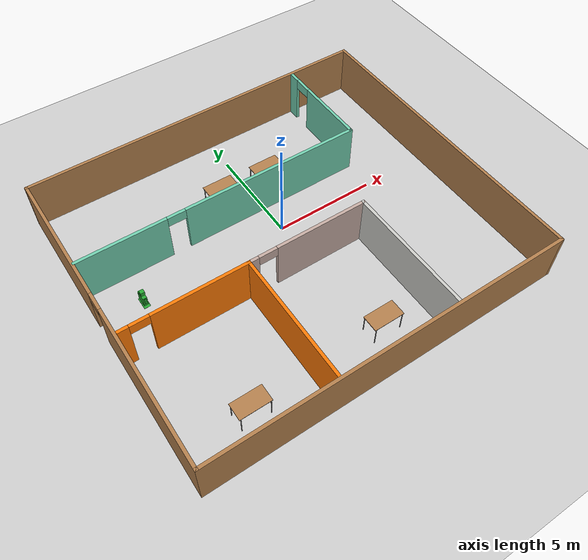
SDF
<sdf version="1.6">
 <world name="default">
  <model name="ground_plane">
   <static>1</static>
   <link name="link">
    <collision name="collision">
     <geometry><plane><normal>0 0 1</normal><size>100 100</size></plane></geometry>
     <surface><friction><ode><mu>100</mu><mu2>50</mu2></ode></friction></surface>
    </collision>
    <visual name="visual">
     <cast_shadows>0</cast_shadows>
     <geometry><plane><normal>0 0 1</normal><size>100 100</size></plane></geometry>
     <material>
      <script><uri>file://media/materials/scripts/gazebo.material</uri><name>Gazebo/Grey</name></script>
     </material>
    </visual>
   </link>
  </model>
  <model name="building_1">
   <pose>-0.446 -1.0545 0 0 -0 0</pose>
   <link name="Wall_42">
    <pose>-8.8 0 0 0 0 -1.5708</pose>
    <visual name="Wall_42_Visual_0">
     <pose>-4.30585 0 1.25 0 -0 0</pose>
     <geometry><box><size>6.83131 0.15 2.5</size></box></geometry>
     <material>
      <script><uri>file://media/materials/scripts/gazebo.material</uri><name>Gazebo/Wood</name></script>
      <ambient>1 1 1 1</ambient>
     </material>
     <meta><layer>0</layer></meta>
    </visual>
    <collision name="Wall_42_Collision_0">
     <geometry><box><size>6.83131 0.15 2.5</size></box></geometry>
     <pose>-4.30585 0 1.25 0 -0 0</pose>
    </collision>
    <visual name="Wall_42_Visual_1">
     <pose>3.86565 0 1.25 0 -0 0</pose>
     <geometry><box><size>7.71169 0.15 2.5</size></box></geometry>
     <material>
      <script><uri>file://media/materials/scripts/gazebo.material</uri><name>Gazebo/Wood</name></script>
      <ambient>1 1 1 1</ambient>
     </material>
     <meta><layer>0</layer></meta>
    </visual>
    <collision name="Wall_42_Collision_1">
     <geometry><box><size>7.71169 0.15 2.5</size></box></geometry>
     <pose>3.86565 0 1.25 0 -0 0</pose>
    </collision>
    <visual name="Wall_42_Visual_2">
     <pose>-0.440192 0 2.25 0 -0 0</pose>
     <geometry><box><size>0.9 0.15 0.5</size></box></geometry>
     <material>
      <script><uri>file://media/materials/scripts/gazebo.material</uri><name>Gazebo/Wood</name></script>
      <ambient>1 1 1 1</ambient>
     </material>
     <meta><layer>0</layer></meta>
    </visual>
    <collision name="Wall_42_Collision_2">
     <geometry><box><size>0.9 0.15 0.5</size></box></geometry>
     <pose>-0.440192 0 2.25 0 -0 0</pose>
    </collision>
   </link>
   <link name="Wall_43">
    <collision name="Wall_43_Collision">
     <geometry><box><size>17.75 0.15 2.5</size></box></geometry>
     <pose>0 0 1.25 0 -0 0</pose>
    </collision>
    <visual name="Wall_43_Visual">
     <pose>0 0 1.25 0 -0 0</pose>
     <geometry><box><size>17.75 0.15 2.5</size></box></geometry>
     <material>
      <script><uri>file://media/materials/scripts/gazebo.material</uri><name>Gazebo/Wood</name></script>
      <ambient>1 1 1 1</ambient>
     </material>
     <meta><layer>0</layer></meta>
    </visual>
    <pose>0 -7.6465 0 0 -0 0</pose>
   </link>
   <link name="Wall_44">
    <collision name="Wall_44_Collision">
     <geometry><box><size>15.443 0.15 2.5</size></box></geometry>
     <pose>0 0 1.25 0 -0 0</pose>
    </collision>
    <visual name="Wall_44_Visual">
     <pose>0 0 1.25 0 -0 0</pose>
     <geometry><box><size>15.443 0.15 2.5</size></box></geometry>
     <material>
      <script><uri>file://media/materials/scripts/gazebo.material</uri><name>Gazebo/Wood</name></script>
      <ambient>1 1 1 1</ambient>
     </material>
     <meta><layer>0</layer></meta>
    </visual>
    <pose>8.8 0 0 0 -0 1.5708</pose>
   </link>
   <link name="Wall_45">
    <collision name="Wall_45_Collision">
     <geometry><box><size>17.75 0.15 2.5</size></box></geometry>
     <pose>0 0 1.25 0 -0 0</pose>
    </collision>
    <visual name="Wall_45_Visual">
     <pose>0 0 1.25 0 -0 0</pose>
     <geometry><box><size>17.75 0.15 2.5</size></box></geometry>
     <material>
      <script><uri>file://media/materials/scripts/gazebo.material</uri><name>Gazebo/Wood</name></script>
      <ambient>1 1 1 1</ambient>
     </material>
     <meta><layer>0</layer></meta>
    </visual>
    <pose>0 7.6465 0 0 -0 3.14159</pose>
   </link>
   <link name="Wall_50">
    <pose>-1.647 2.6095 0 0 -0 0</pose>
    <visual name="Wall_50_Visual_0">
     <pose>-4.97412 0 1.25 0 -0 0</pose>
     <geometry><box><size>4.36782 0.15 2.5</size></box></geometry>
     <material>
      <script><uri>file://media/materials/scripts/gazebo.material</uri><name>Gazebo/Grey</name></script>
      <ambient>0.435294 0.796078 0.67451 1</ambient>
     </material>
     <meta><layer>0</layer></meta>
    </visual>
    <collision name="Wall_50_Collision_0">
     <geometry><box><size>4.36782 0.15 2.5</size></box></geometry>
     <pose>-4.97412 0 1.25 0 -0 0</pose>
    </collision>
    <visual name="Wall_50_Visual_1">
     <pose>2.63391 0 1.25 0 -0 0</pose>
     <geometry><box><size>9.04824 0.15 2.5</size></box></geometry>
     <material>
      <script><uri>file://media/materials/scripts/gazebo.material</uri><name>Gazebo/Grey</name></script>
      <ambient>0.435294 0.796078 0.67451 1</ambient>
     </material>
     <meta><layer>0</layer></meta>
    </visual>
    <collision name="Wall_50_Collision_1">
     <geometry><box><size>9.04824 0.15 2.5</size></box></geometry>
     <pose>2.63391 0 1.25 0 -0 0</pose>
    </collision>
    <visual name="Wall_50_Visual_2">
     <pose>-2.34021 0 2.25 0 -0 0</pose>
     <geometry><box><size>0.9 0.15 0.5</size></box></geometry>
     <material>
      <script><uri>file://media/materials/scripts/gazebo.material</uri><name>Gazebo/Grey</name></script>
      <ambient>0.435294 0.796078 0.67451 1</ambient>
     </material>
     <meta><layer>0</layer></meta>
    </visual>
    <collision name="Wall_50_Collision_2">
     <geometry><box><size>0.9 0.15 0.5</size></box></geometry>
     <pose>-2.34021 0 2.25 0 -0 0</pose>
    </collision>
   </link>
   <link name="Wall_51">
    <pose>5.436 5.052 0 0 -0 1.5708</pose>
    <visual name="Wall_51_Visual_0">
     <pose>-0.73569 0 1.25 0 -0 0</pose>
     <geometry><box><size>3.56362 0.15 2.5</size></box></geometry>
     <material>
      <script><uri>file://media/materials/scripts/gazebo.material</uri><name>Gazebo/Grey</name></script>
      <ambient>0.435294 0.796078 0.67451 1</ambient>
     </material>
     <meta><layer>0</layer></meta>
    </visual>
    <collision name="Wall_51_Collision_0">
     <geometry><box><size>3.56362 0.15 2.5</size></box></geometry>
     <pose>-0.73569 0 1.25 0 -0 0</pose>
    </collision>
    <visual name="Wall_51_Visual_1">
     <pose>2.23181 0 1.25 0 -0 0</pose>
     <geometry><box><size>0.57138 0.15 2.5</size></box></geometry>
     <material>
      <script><uri>file://media/materials/scripts/gazebo.material</uri><name>Gazebo/Grey</name></script>
      <ambient>0.435294 0.796078 0.67451 1</ambient>
     </material>
     <meta><layer>0</layer></meta>
    </visual>
    <collision name="Wall_51_Collision_1">
     <geometry><box><size>0.57138 0.15 2.5</size></box></geometry>
     <pose>2.23181 0 1.25 0 -0 0</pose>
    </collision>
    <visual name="Wall_51_Visual_2">
     <pose>1.49612 0 2.25 0 -0 0</pose>
     <geometry><box><size>0.9 0.15 0.5</size></box></geometry>
     <material>
      <script><uri>file://media/materials/scripts/gazebo.material</uri><name>Gazebo/Grey</name></script>
      <ambient>0.435294 0.796078 0.67451 1</ambient>
     </material>
     <meta><layer>0</layer></meta>
    </visual>
    <collision name="Wall_51_Collision_2">
     <geometry><box><size>0.9 0.15 0.5</size></box></geometry>
     <pose>1.49612 0 2.25 0 -0 0</pose>
    </collision>
   </link>
   <link name="Wall_54">
    <pose>-5.695 -1.3425 0 0 -0 0</pose>
    <visual name="Wall_54_Visual_0">
     <pose>-2.77183 0 1.25 0 -0 0</pose>
     <geometry><box><size>0.512338 0.15 2.5</size></box></geometry>
     <material>
      <script><uri>file://media/materials/scripts/gazebo.material</uri><name>Gazebo/Grey</name></script>
      <ambient>0.996078 0.47451 0.0196078 1</ambient>
     </material>
     <meta><layer>0</layer></meta>
    </visual>
    <collision name="Wall_54_Collision_0">
     <geometry><box><size>0.512338 0.15 2.5</size></box></geometry>
     <pose>-2.77183 0 1.25 0 -0 0</pose>
    </collision>
    <visual name="Wall_54_Visual_1">
     <pose>0.706169 0 1.25 0 -0 0</pose>
     <geometry><box><size>4.64366 0.15 2.5</size></box></geometry>
     <material>
      <script><uri>file://media/materials/scripts/gazebo.material</uri><name>Gazebo/Grey</name></script>
      <ambient>0.996078 0.47451 0.0196078 1</ambient>
     </material>
     <meta><layer>0</layer></meta>
    </visual>
    <collision name="Wall_54_Collision_1">
     <geometry><box><size>4.64366 0.15 2.5</size></box></geometry>
     <pose>0.706169 0 1.25 0 -0 0</pose>
    </collision>
    <visual name="Wall_54_Visual_2">
     <pose>-2.06566 0 2.25 0 -0 0</pose>
     <geometry><box><size>0.9 0.15 0.5</size></box></geometry>
     <material>
      <script><uri>file://media/materials/scripts/gazebo.material</uri><name>Gazebo/Grey</name></script>
      <ambient>0.996078 0.47451 0.0196078 1</ambient>
     </material>
     <meta><layer>0</layer></meta>
    </visual>
    <collision name="Wall_54_Collision_2">
     <geometry><box><size>0.9 0.15 0.5</size></box></geometry>
     <pose>-2.06566 0 2.25 0 -0 0</pose>
    </collision>
   </link>
   <link name="Wall_55">
    <collision name="Wall_55_Collision">
     <geometry><box><size>6.303 0.15 2.5</size></box></geometry>
     <pose>0 0 1.25 0 -0 0</pose>
    </collision>
    <visual name="Wall_55_Visual">
     <pose>0 0 1.25 0 -0 0</pose>
     <geometry><box><size>6.303 0.15 2.5</size></box></geometry>
     <material>
      <script><uri>file://media/materials/scripts/gazebo.material</uri><name>Gazebo/Grey</name></script>
      <ambient>0.996078 0.47451 0.0196078 1</ambient>
     </material>
     <meta><layer>0</layer></meta>
    </visual>
    <pose>-2.742 -4.419 0 0 0 -1.5708</pose>
   </link>
   <link name="Wall_58">
    <pose>0.211 -1.3425 0 0 -0 0</pose>
    <visual name="Wall_58_Visual_0">
     <pose>-2.75873 0 1.25 0 -0 0</pose>
     <geometry><box><size>0.538542 0.15 2.5</size></box></geometry>
     <material>
      <script><uri>file://media/materials/scripts/gazebo.material</uri><name>Gazebo/Grey</name></script>
      <ambient>0.760784 0.662745 0.627451 1</ambient>
     </material>
     <meta><layer>0</layer></meta>
    </visual>
    <collision name="Wall_58_Collision_0">
     <geometry><box><size>0.538542 0.15 2.5</size></box></geometry>
     <pose>-2.75873 0 1.25 0 -0 0</pose>
    </collision>
    <visual name="Wall_58_Visual_1">
     <pose>0.719271 0 1.25 0 -0 0</pose>
     <geometry><box><size>4.61746 0.15 2.5</size></box></geometry>
     <material>
      <script><uri>file://media/materials/scripts/gazebo.material</uri><name>Gazebo/Grey</name></script>
      <ambient>0.760784 0.662745 0.627451 1</ambient>
     </material>
     <meta><layer>0</layer></meta>
    </visual>
    <collision name="Wall_58_Collision_1">
     <geometry><box><size>4.61746 0.15 2.5</size></box></geometry>
     <pose>0.719271 0 1.25 0 -0 0</pose>
    </collision>
    <visual name="Wall_58_Visual_2">
     <pose>-2.03946 0 2.25 0 -0 0</pose>
     <geometry><box><size>0.9 0.15 0.5</size></box></geometry>
     <material>
      <script><uri>file://media/materials/scripts/gazebo.material</uri><name>Gazebo/Grey</name></script>
      <ambient>0.760784 0.662745 0.627451 1</ambient>
     </material>
     <meta><layer>0</layer></meta>
    </visual>
    <collision name="Wall_58_Collision_2">
     <geometry><box><size>0.9 0.15 0.5</size></box></geometry>
     <pose>-2.03946 0 2.25 0 -0 0</pose>
    </collision>
   </link>
   <link name="Wall_59">
    <collision name="Wall_59_Collision">
     <geometry><box><size>6.303 0.15 2.5</size></box></geometry>
     <pose>0 0 1.25 0 -0 0</pose>
    </collision>
    <visual name="Wall_59_Visual">
     <pose>0 0 1.25 0 -0 0</pose>
     <geometry><box><size>6.303 0.15 2.5</size></box></geometry>
     <material>
      <script><uri>file://media/materials/scripts/gazebo.material</uri><name>Gazebo/CeilingTiled</name></script>
      <ambient>1 1 1 1</ambient>
     </material>
     <meta><layer>0</layer></meta>
    </visual>
    <pose>3.164 -4.419 0 0 0 -1.5708</pose>
   </link>
   <static>1</static>
  </model>
  <model name="table_0">
   <static>1</static>
   <link name="link">
    <collision name="surface">
     <pose>0 0 1 0 -0 0</pose>
     <geometry><box><size>1.5 0.8 0.03</size></box></geometry>
     <surface><friction><ode><mu>0.6</mu><mu2>0.6</mu2></ode></friction></surface>
    </collision>
    <visual name="visual1">
     <pose>0 0 1 0 -0 0</pose>
     <geometry><box><size>1.5 0.8 0.03</size></box></geometry>
     <material>
      <script><uri>file://media/materials/scripts/gazebo.material</uri><name>Gazebo/Wood</name></script>
     </material>
    </visual>
    <collision name="front_left_leg">
     <pose>0.68 0.38 0.5 0 -0 0</pose>
     <geometry><cylinder><radius>0.02</radius><length>1</length></cylinder></geometry>
    </collision>
    <visual name="front_left_leg">
     <pose>0.68 0.38 0.5 0 -0 0</pose>
     <geometry><cylinder><radius>0.02</radius><length>1</length></cylinder></geometry>
     <material>
      <script><uri>file://media/materials/scripts/gazebo.material</uri><name>Gazebo/Grey</name></script>
     </material>
    </visual>
    <collision name="front_right_leg">
     <pose>0.68 -0.38 0.5 0 -0 0</pose>
     <geometry><cylinder><radius>0.02</radius><length>1</length></cylinder></geometry>
    </collision>
    <visual name="front_right_leg">
     <pose>0.68 -0.38 0.5 0 -0 0</pose>
     <geometry><cylinder><radius>0.02</radius><length>1</length></cylinder></geometry>
     <material>
      <script><uri>file://media/materials/scripts/gazebo.material</uri><name>Gazebo/Grey</name></script>
     </material>
    </visual>
    <collision name="back_right_leg">
     <pose>-0.68 -0.38 0.5 0 -0 0</pose>
     <geometry><cylinder><radius>0.02</radius><length>1</length></cylinder></geometry>
    </collision>
    <visual name="back_right_leg">
     <pose>-0.68 -0.38 0.5 0 -0 0</pose>
     <geometry><cylinder><radius>0.02</radius><length>1</length></cylinder></geometry>
     <material>
      <script><uri>file://media/materials/scripts/gazebo.material</uri><name>Gazebo/Grey</name></script>
     </material>
    </visual>
    <collision name="back_left_leg">
     <pose>-0.68 0.38 0.5 0 -0 0</pose>
     <geometry><cylinder><radius>0.02</radius><length>1</length></cylinder></geometry>
    </collision>
    <visual name="back_left_leg">
     <pose>-0.68 0.38 0.5 0 -0 0</pose>
     <geometry><cylinder><radius>0.02</radius><length>1</length></cylinder></geometry>
     <material>
      <script><uri>file://media/materials/scripts/gazebo.material</uri><name>Gazebo/Grey</name></script>
     </material>
    </visual>
   </link>
   <pose>1.10733 3.00135 0 0 -0 0</pose>
  </model>
  <model name="table_1">
   <static>1</static>
   <link name="link">
    <collision name="surface">
     <pose>0 0 1 0 -0 0</pose>
     <geometry><box><size>1.5 0.8 0.03</size></box></geometry>
     <surface><friction><ode><mu>0.6</mu><mu2>0.6</mu2></ode></friction></surface>
    </collision>
    <visual name="visual1">
     <pose>0 0 1 0 -0 0</pose>
     <geometry><box><size>1.5 0.8 0.03</size></box></geometry>
     <material>
      <script><uri>file://media/materials/scripts/gazebo.material</uri><name>Gazebo/Wood</name></script>
     </material>
    </visual>
    <collision name="front_left_leg">
     <pose>0.68 0.38 0.5 0 -0 0</pose>
     <geometry><cylinder><radius>0.02</radius><length>1</length></cylinder></geometry>
    </collision>
    <visual name="front_left_leg">
     <pose>0.68 0.38 0.5 0 -0 0</pose>
     <geometry><cylinder><radius>0.02</radius><length>1</length></cylinder></geometry>
     <material>
      <script><uri>file://media/materials/scripts/gazebo.material</uri><name>Gazebo/Grey</name></script>
     </material>
    </visual>
    <collision name="front_right_leg">
     <pose>0.68 -0.38 0.5 0 -0 0</pose>
     <geometry><cylinder><radius>0.02</radius><length>1</length></cylinder></geometry>
    </collision>
    <visual name="front_right_leg">
     <pose>0.68 -0.38 0.5 0 -0 0</pose>
     <geometry><cylinder><radius>0.02</radius><length>1</length></cylinder></geometry>
     <material>
      <script><uri>file://media/materials/scripts/gazebo.material</uri><name>Gazebo/Grey</name></script>
     </material>
    </visual>
    <collision name="back_right_leg">
     <pose>-0.68 -0.38 0.5 0 -0 0</pose>
     <geometry><cylinder><radius>0.02</radius><length>1</length></cylinder></geometry>
    </collision>
    <visual name="back_right_leg">
     <pose>-0.68 -0.38 0.5 0 -0 0</pose>
     <geometry><cylinder><radius>0.02</radius><length>1</length></cylinder></geometry>
     <material>
      <script><uri>file://media/materials/scripts/gazebo.material</uri><name>Gazebo/Grey</name></script>
     </material>
    </visual>
    <collision name="back_left_leg">
     <pose>-0.68 0.38 0.5 0 -0 0</pose>
     <geometry><cylinder><radius>0.02</radius><length>1</length></cylinder></geometry>
    </collision>
    <visual name="back_left_leg">
     <pose>-0.68 0.38 0.5 0 -0 0</pose>
     <geometry><cylinder><radius>0.02</radius><length>1</length></cylinder></geometry>
     <material>
      <script><uri>file://media/materials/scripts/gazebo.material</uri><name>Gazebo/Grey</name></script>
     </material>
    </visual>
   </link>
   <pose>-1.40994 3.06696 0 0 -0 0</pose>
  </model>
  <model name="table_2">
   <static>1</static>
   <link name="link">
    <collision name="surface">
     <pose>0 0 1 0 -0 0</pose>
     <geometry><box><size>1.5 0.8 0.03</size></box></geometry>
     <surface><friction><ode><mu>0.6</mu><mu2>0.6</mu2></ode></friction></surface>
    </collision>
    <visual name="visual1">
     <pose>0 0 1 0 -0 0</pose>
     <geometry><box><size>1.5 0.8 0.03</size></box></geometry>
     <material>
      <script><uri>file://media/materials/scripts/gazebo.material</uri><name>Gazebo/Wood</name></script>
     </material>
    </visual>
    <collision name="front_left_leg">
     <pose>0.68 0.38 0.5 0 -0 0</pose>
     <geometry><cylinder><radius>0.02</radius><length>1</length></cylinder></geometry>
    </collision>
    <visual name="front_left_leg">
     <pose>0.68 0.38 0.5 0 -0 0</pose>
     <geometry><cylinder><radius>0.02</radius><length>1</length></cylinder></geometry>
     <material>
      <script><uri>file://media/materials/scripts/gazebo.material</uri><name>Gazebo/Grey</name></script>
     </material>
    </visual>
    <collision name="front_right_leg">
     <pose>0.68 -0.38 0.5 0 -0 0</pose>
     <geometry><cylinder><radius>0.02</radius><length>1</length></cylinder></geometry>
    </collision>
    <visual name="front_right_leg">
     <pose>0.68 -0.38 0.5 0 -0 0</pose>
     <geometry><cylinder><radius>0.02</radius><length>1</length></cylinder></geometry>
     <material>
      <script><uri>file://media/materials/scripts/gazebo.material</uri><name>Gazebo/Grey</name></script>
     </material>
    </visual>
    <collision name="back_right_leg">
     <pose>-0.68 -0.38 0.5 0 -0 0</pose>
     <geometry><cylinder><radius>0.02</radius><length>1</length></cylinder></geometry>
    </collision>
    <visual name="back_right_leg">
     <pose>-0.68 -0.38 0.5 0 -0 0</pose>
     <geometry><cylinder><radius>0.02</radius><length>1</length></cylinder></geometry>
     <material>
      <script><uri>file://media/materials/scripts/gazebo.material</uri><name>Gazebo/Grey</name></script>
     </material>
    </visual>
    <collision name="back_left_leg">
     <pose>-0.68 0.38 0.5 0 -0 0</pose>
     <geometry><cylinder><radius>0.02</radius><length>1</length></cylinder></geometry>
    </collision>
    <visual name="back_left_leg">
     <pose>-0.68 0.38 0.5 0 -0 0</pose>
     <geometry><cylinder><radius>0.02</radius><length>1</length></cylinder></geometry>
     <material>
      <script><uri>file://media/materials/scripts/gazebo.material</uri><name>Gazebo/Grey</name></script>
     </material>
    </visual>
   </link>
   <pose>0.503693 -6.82744 0 0 -0 0</pose>
  </model>
  <model name="table_3">
   <static>1</static>
   <link name="link">
    <collision name="surface">
     <pose>0 0 1 0 -0 0</pose>
     <geometry><box><size>1.5 0.8 0.03</size></box></geometry>
     <surface><friction><ode><mu>0.6</mu><mu2>0.6</mu2></ode></friction></surface>
    </collision>
    <visual name="visual1">
     <pose>0 0 1 0 -0 0</pose>
     <geometry><box><size>1.5 0.8 0.03</size></box></geometry>
     <material>
      <script><uri>file://media/materials/scripts/gazebo.material</uri><name>Gazebo/Wood</name></script>
     </material>
    </visual>
    <collision name="front_left_leg">
     <pose>0.68 0.38 0.5 0 -0 0</pose>
     <geometry><cylinder><radius>0.02</radius><length>1</length></cylinder></geometry>
    </collision>
    <visual name="front_left_leg">
     <pose>0.68 0.38 0.5 0 -0 0</pose>
     <geometry><cylinder><radius>0.02</radius><length>1</length></cylinder></geometry>
     <material>
      <script><uri>file://media/materials/scripts/gazebo.material</uri><name>Gazebo/Grey</name></script>
     </material>
    </visual>
    <collision name="front_right_leg">
     <pose>0.68 -0.38 0.5 0 -0 0</pose>
     <geometry><cylinder><radius>0.02</radius><length>1</length></cylinder></geometry>
    </collision>
    <visual name="front_right_leg">
     <pose>0.68 -0.38 0.5 0 -0 0</pose>
     <geometry><cylinder><radius>0.02</radius><length>1</length></cylinder></geometry>
     <material>
      <script><uri>file://media/materials/scripts/gazebo.material</uri><name>Gazebo/Grey</name></script>
     </material>
    </visual>
    <collision name="back_right_leg">
     <pose>-0.68 -0.38 0.5 0 -0 0</pose>
     <geometry><cylinder><radius>0.02</radius><length>1</length></cylinder></geometry>
    </collision>
    <visual name="back_right_leg">
     <pose>-0.68 -0.38 0.5 0 -0 0</pose>
     <geometry><cylinder><radius>0.02</radius><length>1</length></cylinder></geometry>
     <material>
      <script><uri>file://media/materials/scripts/gazebo.material</uri><name>Gazebo/Grey</name></script>
     </material>
    </visual>
    <collision name="back_left_leg">
     <pose>-0.68 0.38 0.5 0 -0 0</pose>
     <geometry><cylinder><radius>0.02</radius><length>1</length></cylinder></geometry>
    </collision>
    <visual name="back_left_leg">
     <pose>-0.68 0.38 0.5 0 -0 0</pose>
     <geometry><cylinder><radius>0.02</radius><length>1</length></cylinder></geometry>
     <material>
      <script><uri>file://media/materials/scripts/gazebo.material</uri><name>Gazebo/Grey</name></script>
     </material>
    </visual>
   </link>
   <pose>-6.08995 -7.03681 0 0 -0 0</pose>
  </model>
  <model name="robot_1">
   <link name="foot_1">
    <pose>-0.002177 -0.002528 -0.025294 0 -0 0</pose>
    <inertial>
     <mass>1</mass>
     <inertia>
      <ixx>0.166667</ixx>
      <ixy>0</ixy>
      <ixz>0</ixz>
      <iyy>0.166667</iyy>
      <iyz>0</iyz>
      <izz>0.166667</izz>
     </inertia>
    </inertial>
    <visual name="visual">
     <geometry><box><size>0.3 0.3 0.01</size></box></geometry>
     <material>
      <lighting>1</lighting>
      <script><uri>file://media/materials/scripts/gazebo.material</uri><name>Gazebo/Green</name></script>
     </material>
    </visual>
    <collision name="collision">
     <geometry><box><size>0.3 0.3 0.01</size></box></geometry>
     <surface>
      <friction>
       <ode><mu>1</mu><mu2>1</mu2><fdir1>0 0 0</fdir1><slip1>0</slip1><slip2>0</slip2></ode>
       <torsional>
        <coefficient>1</coefficient>
        <patch_radius>0</patch_radius>
        <surface_radius>0</surface_radius>
        <use_patch_radius>1</use_patch_radius>
        <ode><slip>0</slip></ode>
       </torsional>
      </friction>
      <bounce><restitution_coefficient>0</restitution_coefficient><threshold>1e+06</threshold></bounce>
      <contact>
       <collide_without_contact>0</collide_without_contact>
       <collide_without_contact_bitmask>1</collide_without_contact_bitmask>
       <collide_bitmask>1</collide_bitmask>
       <ode>
        <soft_cfm>0</soft_cfm>
        <soft_erp>0.2</soft_erp>
        <kp>1e+13</kp>
        <kd>1</kd>
        <max_vel>0.01</max_vel>
        <min_depth>0</min_depth>
       </ode>
       <bullet>
        <split_impulse>1</split_impulse>
        <split_impulse_penetration_threshold>-0.01</split_impulse_penetration_threshold>
        <soft_cfm>0</soft_cfm>
        <soft_erp>0.2</soft_erp>
        <kp>1e+13</kp>
        <kd>1</kd>
       </bullet>
      </contact>
     </surface>
    </collision>
   </link>
   <link name="arm_1">
    <pose>-0.003122 -0.091998 0.37 -3e-06 -0 -2e-05</pose>
    <inertial>
     <mass>1</mass>
     <inertia>
      <ixx>0.166667</ixx>
      <ixy>0</ixy>
      <ixz>0</ixz>
      <iyy>0.166667</iyy>
      <iyz>0</iyz>
      <izz>0.166667</izz>
     </inertia>
    </inertial>
    <visual name="visual">
     <geometry><box><size>0.09 0.02 0.35</size></box></geometry>
     <material>
      <lighting>1</lighting>
      <script><uri>file://media/materials/scripts/gazebo.material</uri><name>Gazebo/Green</name></script>
     </material>
    </visual>
    <collision name="collision">
     <geometry><box><size>0.09 0.02 0.35</size></box></geometry>
     <surface>
      <friction>
       <ode><mu>1</mu><mu2>1</mu2><fdir1>0 0 0</fdir1><slip1>0</slip1><slip2>0</slip2></ode>
       <torsional>
        <coefficient>1</coefficient>
        <patch_radius>0</patch_radius>
        <surface_radius>0</surface_radius>
        <use_patch_radius>1</use_patch_radius>
        <ode><slip>0</slip></ode>
       </torsional>
      </friction>
      <bounce><restitution_coefficient>0</restitution_coefficient><threshold>1e+06</threshold></bounce>
      <contact>
       <collide_without_contact>0</collide_without_contact>
       <collide_without_contact_bitmask>1</collide_without_contact_bitmask>
       <collide_bitmask>1</collide_bitmask>
       <ode>
        <soft_cfm>0</soft_cfm>
        <soft_erp>0.2</soft_erp>
        <kp>1e+13</kp>
        <kd>1</kd>
        <max_vel>0.01</max_vel>
        <min_depth>0</min_depth>
       </ode>
       <bullet>
        <split_impulse>1</split_impulse>
        <split_impulse_penetration_threshold>-0.01</split_impulse_penetration_threshold>
        <soft_cfm>0</soft_cfm>
        <soft_erp>0.2</soft_erp>
        <kp>1e+13</kp>
        <kd>1</kd>
       </bullet>
      </contact>
     </surface>
    </collision>
   </link>
   <link name="arm_2">
    <pose>-0.003122 0.431998 0.37 -6e-06 -0 -4e-05</pose>
    <inertial>
     <mass>1</mass>
     <inertia>
      <ixx>0.166667</ixx>
      <ixy>0</ixy>
      <ixz>0</ixz>
      <iyy>0.166667</iyy>
      <iyz>0</iyz>
      <izz>0.166667</izz>
     </inertia>
    </inertial>
    <visual name="visual">
     <geometry><box><size>0.09 0.02 0.35</size></box></geometry>
     <material>
      <lighting>1</lighting>
      <script><uri>file://media/materials/scripts/gazebo.material</uri><name>Gazebo/Green</name></script>
     </material>
    </visual>
    <collision name="collision">
     <geometry><box><size>0.09 0.02 0.35</size></box></geometry>
     <surface>
      <friction>
       <ode><mu>1</mu><mu2>1</mu2><fdir1>0 0 0</fdir1><slip1>0</slip1><slip2>0</slip2></ode>
       <torsional>
        <coefficient>1</coefficient>
        <patch_radius>0</patch_radius>
        <surface_radius>0</surface_radius>
        <use_patch_radius>1</use_patch_radius>
        <ode><slip>0</slip></ode>
       </torsional>
      </friction>
      <bounce><restitution_coefficient>0</restitution_coefficient><threshold>1e+06</threshold></bounce>
      <contact>
       <collide_without_contact>0</collide_without_contact>
       <collide_without_contact_bitmask>1</collide_without_contact_bitmask>
       <collide_bitmask>1</collide_bitmask>
       <ode>
        <soft_cfm>0</soft_cfm>
        <soft_erp>0.2</soft_erp>
        <kp>1e+13</kp>
        <kd>1</kd>
        <max_vel>0.01</max_vel>
        <min_depth>0</min_depth>
       </ode>
       <bullet>
        <split_impulse>1</split_impulse>
        <split_impulse_penetration_threshold>-0.01</split_impulse_penetration_threshold>
        <soft_cfm>0</soft_cfm>
        <soft_erp>0.2</soft_erp>
        <kp>1e+13</kp>
        <kd>1</kd>
       </bullet>
      </contact>
     </surface>
    </collision>
   </link>
   <link name="body">
    <pose>-0.009988 0.170319 0.318893 0 -0 0</pose>
    <inertial>
     <mass>1</mass>
     <inertia>
      <ixx>0.166667</ixx>
      <ixy>0</ixy>
      <ixz>0</ixz>
      <iyy>0.166667</iyy>
      <iyz>0</iyz>
      <izz>0.166667</izz>
     </inertia>
    </inertial>
    <visual name="visual">
     <geometry><box><size>0.2 0.5 0.5</size></box></geometry>
     <material>
      <lighting>1</lighting>
      <script><uri>file://media/materials/scripts/gazebo.material</uri><name>Gazebo/Green</name></script>
     </material>
    </visual>
    <collision name="collision">
     <geometry><box><size>0.2 0.5 0.5</size></box></geometry>
     <surface>
      <friction>
       <ode><mu>1</mu><mu2>1</mu2><fdir1>0 0 0</fdir1><slip1>0</slip1><slip2>0</slip2></ode>
       <torsional>
        <coefficient>1</coefficient>
        <patch_radius>0</patch_radius>
        <surface_radius>0</surface_radius>
        <use_patch_radius>1</use_patch_radius>
        <ode><slip>0</slip></ode>
       </torsional>
      </friction>
      <bounce><restitution_coefficient>0</restitution_coefficient><threshold>1e+06</threshold></bounce>
      <contact>
       <collide_without_contact>0</collide_without_contact>
       <collide_without_contact_bitmask>1</collide_without_contact_bitmask>
       <collide_bitmask>1</collide_bitmask>
       <ode>
        <soft_cfm>0</soft_cfm>
        <soft_erp>0.2</soft_erp>
        <kp>1e+13</kp>
        <kd>1</kd>
        <max_vel>0.01</max_vel>
        <min_depth>0</min_depth>
       </ode>
       <bullet>
        <split_impulse>1</split_impulse>
        <split_impulse_penetration_threshold>-0.01</split_impulse_penetration_threshold>
        <soft_cfm>0</soft_cfm>
        <soft_erp>0.2</soft_erp>
        <kp>1e+13</kp>
        <kd>1</kd>
       </bullet>
      </contact>
     </surface>
    </collision>
   </link>
   <link name="foot_2">
    <pose>-0.002177 0.32249 -0.025294 0 -0 0</pose>
    <inertial>
     <mass>1</mass>
     <inertia>
      <ixx>0.166667</ixx>
      <ixy>0</ixy>
      <ixz>0</ixz>
      <iyy>0.166667</iyy>
      <iyz>0</iyz>
      <izz>0.166667</izz>
     </inertia>
    </inertial>
    <visual name="visual">
     <geometry><box><size>0.3 0.3 0.01</size></box></geometry>
     <material>
      <lighting>1</lighting>
      <script><uri>file://media/materials/scripts/gazebo.material</uri><name>Gazebo/Green</name></script>
     </material>
    </visual>
    <collision name="collision">
     <geometry><box><size>0.3 0.3 0.01</size></box></geometry>
     <surface>
      <friction>
       <ode><mu>1</mu><mu2>1</mu2><fdir1>0 0 0</fdir1><slip1>0</slip1><slip2>0</slip2></ode>
       <torsional>
        <coefficient>1</coefficient>
        <patch_radius>0</patch_radius>
        <surface_radius>0</surface_radius>
        <use_patch_radius>1</use_patch_radius>
        <ode><slip>0</slip></ode>
       </torsional>
      </friction>
      <bounce><restitution_coefficient>0</restitution_coefficient><threshold>1e+06</threshold></bounce>
      <contact>
       <collide_without_contact>0</collide_without_contact>
       <collide_without_contact_bitmask>1</collide_without_contact_bitmask>
       <collide_bitmask>1</collide_bitmask>
       <ode>
        <soft_cfm>0</soft_cfm>
        <soft_erp>0.2</soft_erp>
        <kp>1e+13</kp>
        <kd>1</kd>
        <max_vel>0.01</max_vel>
        <min_depth>0</min_depth>
       </ode>
       <bullet>
        <split_impulse>1</split_impulse>
        <split_impulse_penetration_threshold>-0.01</split_impulse_penetration_threshold>
        <soft_cfm>0</soft_cfm>
        <soft_erp>0.2</soft_erp>
        <kp>1e+13</kp>
        <kd>1</kd>
       </bullet>
      </contact>
     </surface>
    </collision>
   </link>
   <link name="head">
    <pose>0.003947 0.184567 0.671241 0 -0 1e-06</pose>
    <inertial>
     <mass>1</mass>
     <inertia>
      <ixx>0.166667</ixx>
      <ixy>0</ixy>
      <ixz>0</ixz>
      <iyy>0.166667</iyy>
      <iyz>0</iyz>
      <izz>0.166667</izz>
     </inertia>
    </inertial>
    <visual name="visual">
     <geometry><box><size>0.2 0.2 0.2</size></box></geometry>
     <material>
      <lighting>1</lighting>
      <script><uri>file://media/materials/scripts/gazebo.material</uri><name>Gazebo/Green</name></script>
     </material>
    </visual>
    <collision name="collision">
     <geometry><box><size>0.2 0.2 0.2</size></box></geometry>
     <surface>
      <friction>
       <ode><mu>1</mu><mu2>1</mu2><fdir1>0 0 0</fdir1><slip1>0</slip1><slip2>0</slip2></ode>
       <torsional>
        <coefficient>1</coefficient>
        <patch_radius>0</patch_radius>
        <surface_radius>0</surface_radius>
        <use_patch_radius>1</use_patch_radius>
        <ode><slip>0</slip></ode>
       </torsional>
      </friction>
      <bounce><restitution_coefficient>0</restitution_coefficient><threshold>1e+06</threshold></bounce>
      <contact>
       <collide_without_contact>0</collide_without_contact>
       <collide_without_contact_bitmask>1</collide_without_contact_bitmask>
       <collide_bitmask>1</collide_bitmask>
       <ode>
        <soft_cfm>0</soft_cfm>
        <soft_erp>0.2</soft_erp>
        <kp>1e+13</kp>
        <kd>1</kd>
        <max_vel>0.01</max_vel>
        <min_depth>0</min_depth>
       </ode>
       <bullet>
        <split_impulse>1</split_impulse>
        <split_impulse_penetration_threshold>-0.01</split_impulse_penetration_threshold>
        <soft_cfm>0</soft_cfm>
        <soft_erp>0.2</soft_erp>
        <kp>1e+13</kp>
        <kd>1</kd>
       </bullet>
      </contact>
     </surface>
    </collision>
   </link>
   <link name="leg_1">
    <pose>0.002177 0.002528 0.025294 0 -0 0</pose>
    <inertial>
     <mass>1</mass>
     <inertia><ixx>0.145833</ixx><ixy>0</ixy><ixz>0</ixz><iyy>0.145833</iyy><iyz>0</iyz><izz>0.125</izz></inertia>
    </inertial>
    <visual name="visual">
     <geometry><cylinder><radius>0.01</radius><length>0.1</length></cylinder></geometry>
     <material>
      <lighting>1</lighting>
      <script><uri>file://media/materials/scripts/gazebo.material</uri><name>Gazebo/Green</name></script>
     </material>
    </visual>
    <collision name="collision">
     <geometry><cylinder><radius>0.01</radius><length>0.1</length></cylinder></geometry>
     <surface>
      <friction>
       <ode><mu>1</mu><mu2>1</mu2><fdir1>0 0 0</fdir1><slip1>0</slip1><slip2>0</slip2></ode>
       <torsional>
        <coefficient>1</coefficient>
        <patch_radius>0</patch_radius>
        <surface_radius>0</surface_radius>
        <use_patch_radius>1</use_patch_radius>
        <ode><slip>0</slip></ode>
       </torsional>
      </friction>
      <bounce><restitution_coefficient>0</restitution_coefficient><threshold>1e+06</threshold></bounce>
      <contact>
       <collide_without_contact>0</collide_without_contact>
       <collide_without_contact_bitmask>1</collide_without_contact_bitmask>
       <collide_bitmask>1</collide_bitmask>
       <ode>
        <soft_cfm>0</soft_cfm>
        <soft_erp>0.2</soft_erp>
        <kp>1e+13</kp>
        <kd>1</kd>
        <max_vel>0.01</max_vel>
        <min_depth>0</min_depth>
       </ode>
       <bullet>
        <split_impulse>1</split_impulse>
        <split_impulse_penetration_threshold>-0.01</split_impulse_penetration_threshold>
        <soft_cfm>0</soft_cfm>
        <soft_erp>0.2</soft_erp>
        <kp>1e+13</kp>
        <kd>1</kd>
       </bullet>
      </contact>
     </surface>
    </collision>
   </link>
   <link name="leg_2">
    <pose>0.00771 0.322829 0.025294 0 -0 0</pose>
    <inertial>
     <mass>1</mass>
     <inertia><ixx>0.145833</ixx><ixy>0</ixy><ixz>0</ixz><iyy>0.145833</iyy><iyz>0</iyz><izz>0.125</izz></inertia>
    </inertial>
    <visual name="visual">
     <geometry><cylinder><radius>0.01</radius><length>0.1</length></cylinder></geometry>
     <material>
      <lighting>1</lighting>
      <script><uri>file://media/materials/scripts/gazebo.material</uri><name>Gazebo/Green</name></script>
     </material>
    </visual>
    <collision name="collision">
     <geometry><cylinder><radius>0.01</radius><length>0.1</length></cylinder></geometry>
     <surface>
      <friction>
       <ode><mu>1</mu><mu2>1</mu2><fdir1>0 0 0</fdir1><slip1>0</slip1><slip2>0</slip2></ode>
       <torsional>
        <coefficient>1</coefficient>
        <patch_radius>0</patch_radius>
        <surface_radius>0</surface_radius>
        <use_patch_radius>1</use_patch_radius>
        <ode><slip>0</slip></ode>
       </torsional>
      </friction>
      <bounce><restitution_coefficient>0</restitution_coefficient><threshold>1e+06</threshold></bounce>
      <contact>
       <collide_without_contact>0</collide_without_contact>
       <collide_without_contact_bitmask>1</collide_without_contact_bitmask>
       <collide_bitmask>1</collide_bitmask>
       <ode>
        <soft_cfm>0</soft_cfm>
        <soft_erp>0.2</soft_erp>
        <kp>1e+13</kp>
        <kd>1</kd>
        <max_vel>0.01</max_vel>
        <min_depth>0</min_depth>
       </ode>
       <bullet>
        <split_impulse>1</split_impulse>
        <split_impulse_penetration_threshold>-0.01</split_impulse_penetration_threshold>
        <soft_cfm>0</soft_cfm>
        <soft_erp>0.2</soft_erp>
        <kp>1e+13</kp>
        <kd>1</kd>
       </bullet>
      </contact>
     </surface>
    </collision>
   </link>
   <joint name="body_arm_1" type="revolute">
    <parent>body</parent>
    <child>arm_1</child>
    <axis>
     <xyz>1 0 0</xyz>
     <use_parent_model_frame>0</use_parent_model_frame>
     <limit>
      <lower>-1.79769e+308</lower>
      <upper>1.79769e+308</upper>
      <effort>-1</effort>
      <velocity>-1</velocity>
     </limit>
     <dynamics>
      <spring_reference>0</spring_reference>
      <spring_stiffness>0</spring_stiffness>
      <damping>0</damping>
      <friction>0</friction>
     </dynamics>
    </axis>
    <physics>
     <ode><limit><cfm>0</cfm><erp>0.2</erp></limit><suspension><cfm>0</cfm><erp>0.2</erp></suspension></ode>
    </physics>
   </joint>
   <joint name="body_arm_2" type="revolute">
    <parent>body</parent>
    <child>arm_2</child>
    <axis>
     <xyz>1 0 0</xyz>
     <use_parent_model_frame>0</use_parent_model_frame>
     <limit>
      <lower>-1.79769e+308</lower>
      <upper>1.79769e+308</upper>
      <effort>-1</effort>
      <velocity>-1</velocity>
     </limit>
     <dynamics>
      <spring_reference>0</spring_reference>
      <spring_stiffness>0</spring_stiffness>
      <damping>0</damping>
      <friction>0</friction>
     </dynamics>
    </axis>
    <physics>
     <ode><limit><cfm>0</cfm><erp>0.2</erp></limit><suspension><cfm>0</cfm><erp>0.2</erp></suspension></ode>
    </physics>
   </joint>
   <joint name="body_head" type="revolute">
    <parent>body</parent>
    <child>head</child>
    <axis>
     <xyz>1 0 0</xyz>
     <use_parent_model_frame>0</use_parent_model_frame>
     <limit>
      <lower>-1.79769e+308</lower>
      <upper>1.79769e+308</upper>
      <effort>-1</effort>
      <velocity>-1</velocity>
     </limit>
     <dynamics>
      <spring_reference>0</spring_reference>
      <spring_stiffness>0</spring_stiffness>
      <damping>0</damping>
      <friction>0</friction>
     </dynamics>
    </axis>
    <physics>
     <ode><limit><cfm>0</cfm><erp>0.2</erp></limit><suspension><cfm>0</cfm><erp>0.2</erp></suspension></ode>
    </physics>
   </joint>
   <joint name="body_leg1" type="revolute">
    <parent>body</parent>
    <child>leg_1</child>
    <axis>
     <xyz>1 0 0</xyz>
     <use_parent_model_frame>0</use_parent_model_frame>
     <limit>
      <lower>-1.79769e+308</lower>
      <upper>1.79769e+308</upper>
      <effort>-1</effort>
      <velocity>-1</velocity>
     </limit>
     <dynamics>
      <spring_reference>0</spring_reference>
      <spring_stiffness>0</spring_stiffness>
      <damping>0</damping>
      <friction>0</friction>
     </dynamics>
    </axis>
    <physics>
     <ode><limit><cfm>0</cfm><erp>0.2</erp></limit><suspension><cfm>0</cfm><erp>0.2</erp></suspension></ode>
    </physics>
   </joint>
   <joint name="body_leg2" type="revolute">
    <parent>body</parent>
    <child>leg_2</child>
    <axis>
     <xyz>1 0 0</xyz>
     <use_parent_model_frame>0</use_parent_model_frame>
     <limit>
      <lower>-1.79769e+308</lower>
      <upper>1.79769e+308</upper>
      <effort>-1</effort>
      <velocity>-1</velocity>
     </limit>
     <dynamics>
      <spring_reference>0</spring_reference>
      <spring_stiffness>0</spring_stiffness>
      <damping>0</damping>
      <friction>0</friction>
     </dynamics>
    </axis>
    <physics>
     <ode><limit><cfm>0</cfm><erp>0.2</erp></limit><suspension><cfm>0</cfm><erp>0.2</erp></suspension></ode>
    </physics>
   </joint>
   <joint name="foot_leg_1" type="fixed">
    <parent>foot_1</parent>
    <child>leg_1</child>
    <pose>0 0 0 -0.09 0 0</pose>
    <physics>
     <ode><limit><cfm>0</cfm><erp>0.2</erp></limit><suspension><cfm>0</cfm><erp>0.2</erp></suspension></ode>
    </physics>
   </joint>
   <joint name="foot_leg_2" type="fixed">
    <parent>foot_2</parent>
    <child>leg_2</child>
    <physics>
     <ode><limit><cfm>0</cfm><erp>0.2</erp></limit><suspension><cfm>0</cfm><erp>0.2</erp></suspension></ode>
    </physics>
   </joint>
   <static>0</static>
   <pose>-7.20062 -0.251173 0.030293 -5e-06 0 0.002575</pose>
  </model>
 </world>
</sdf>
